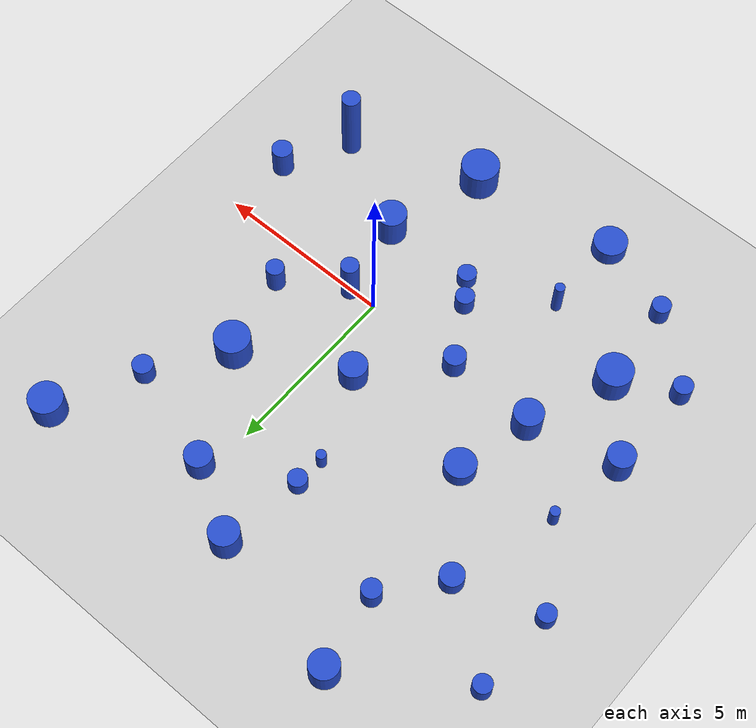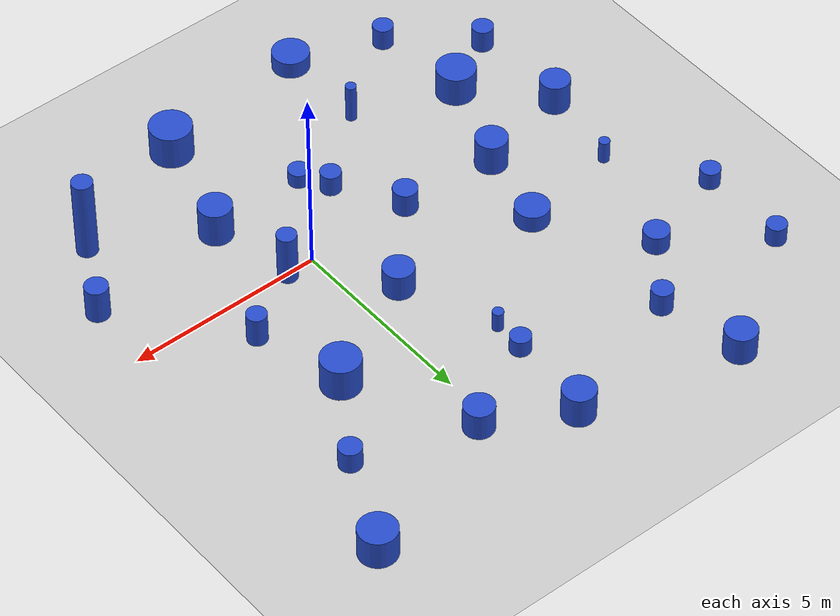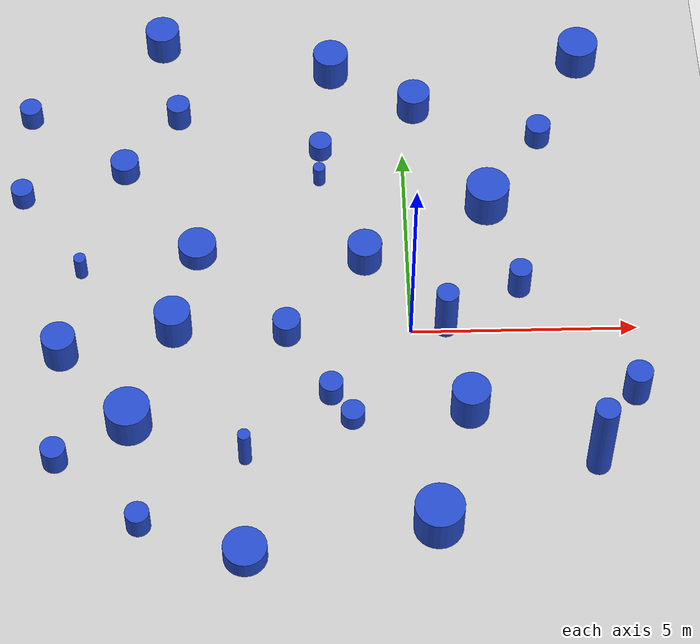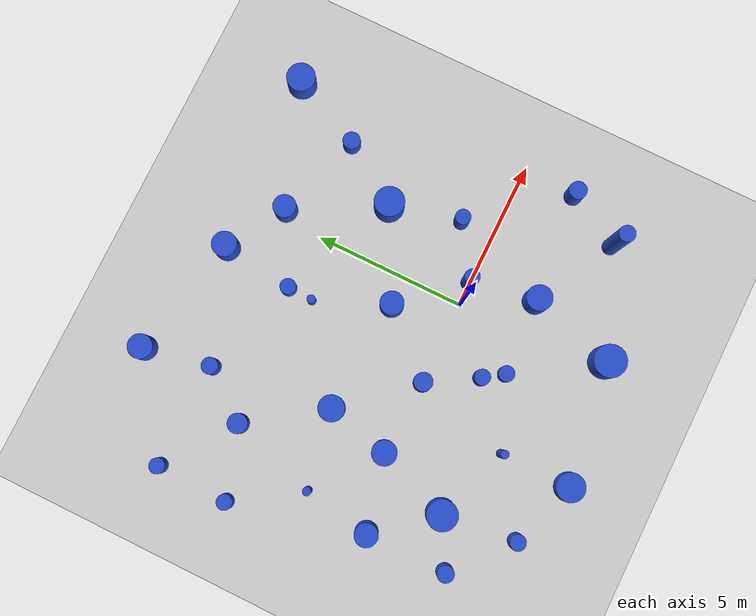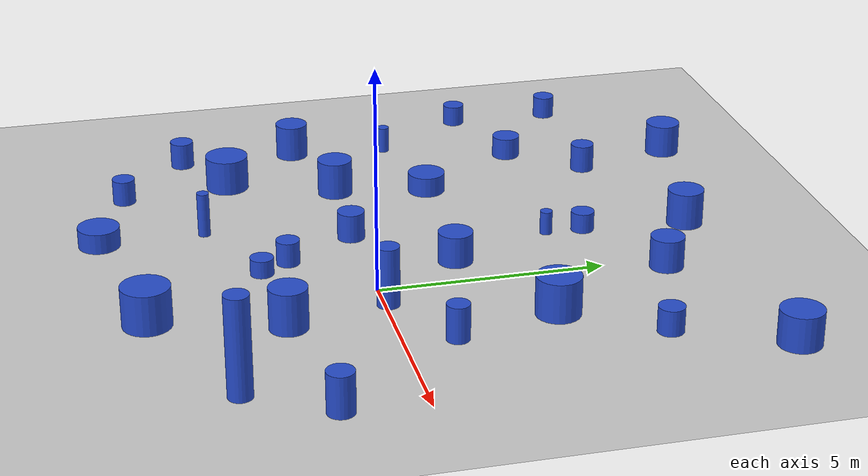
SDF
<sdf version="1.7">
 <world name="default">
  <plugin name="disable_physics" filename="libdisable_physics.so"/>
  <light name="sun" type="directional">
   <pose>0 0 10 0 -0 0</pose>
   <diffuse>0.8 0.8 0.8 1</diffuse>
   <specular>0.1 0.1 0.1 1</specular>
   <attenuation>
    <range>1000</range>
    <constant>0.9</constant>
    <linear>0.01</linear>
    <quadratic>0.001</quadratic>
   </attenuation>
   <direction>-0.5 0.5 -1</direction>
   <spot><inner_angle>0</inner_angle><outer_angle>0</outer_angle><falloff>0</falloff></spot>
  </light>
  <model name="ground_plane">
   <static>1</static>
   <link name="link">
    <collision name="collision">
     <geometry><plane><normal>0 0 1</normal><size>100 100</size></plane></geometry>
     <surface><friction><ode><mu>100</mu><mu2>50</mu2></ode></friction></surface>
    </collision>
    <visual name="visual">
     <cast_shadows>0</cast_shadows>
     <geometry><plane><normal>0 0 1</normal><size>100 100</size></plane></geometry>
     <material>
      <script><uri>file://media/materials/scripts/gazebo.material</uri><name>Gazebo/Grey</name></script>
     </material>
    </visual>
   </link>
  </model>
  <gravity>0 0 -9.8</gravity>
  <magnetic_field>6e-06 2.3e-05 -4.2e-05</magnetic_field>
  <atmosphere type="adiabatic"/>
  <physics name="default_physics" default="0" type="ode">
   <max_step_size>0.001</max_step_size>
   <real_time_factor>1</real_time_factor>
   <real_time_update_rate>1000</real_time_update_rate>
  </physics>
  <scene><ambient>0.4 0.4 0.4 1</ambient><background>0.7 0.7 0.7 1</background><shadows>1</shadows></scene>
  <spherical_coordinates>
   <surface_model>EARTH_WGS84</surface_model>
   <latitude_deg>0</latitude_deg>
   <longitude_deg>0</longitude_deg>
   <elevation>0</elevation>
   <heading_deg>0</heading_deg>
  </spherical_coordinates>
  <model name="8">
   <static>0</static>
   <link name="link">
    <inertial>
     <mass>2</mass>
     <inertia><ixx>2.56634</ixx><ixy>0</ixy><ixz>0</ixz><iyy>2.56634</iyy><iyz>0</iyz><izz>0.222806</izz></inertia>
    </inertial>
    <collision name="collision">
     <geometry><cylinder><length>0.788835</length><radius>0.472024</radius></cylinder></geometry>
     <surface><contact><collide_without_contact>1</collide_without_contact></contact></surface>
    </collision>
    <visual name="visual">
     <geometry><cylinder><length>0.788835</length><radius>0.472024</radius></cylinder></geometry>
     <material>
      <script><uri>file://media/materials/scripts/gazebo.material</uri><name>Gazebo/Blue</name></script>
     </material>
    </visual>
    <gravity>0</gravity>
   </link>
   <pose>4.30291 7.77628 0.388186 0 -0 0</pose>
  </model>
  <model name="33">
   <static>0</static>
   <link name="link">
    <inertial>
     <mass>2</mass>
     <inertia><ixx>2.44196</ixx><ixy>0</ixy><ixz>0</ixz><iyy>2.44196</iyy><iyz>0</iyz><izz>0.187757</izz></inertia>
    </inertial>
    <collision name="collision">
     <geometry><cylinder><length>1.36135</length><radius>0.247181</radius></cylinder></geometry>
     <surface><contact><collide_without_contact>1</collide_without_contact></contact></surface>
    </collision>
    <visual name="visual">
     <geometry><cylinder><length>1.36135</length><radius>0.247181</radius></cylinder></geometry>
     <material>
      <script><uri>file://media/materials/scripts/gazebo.material</uri><name>Gazebo/Blue</name></script>
     </material>
    </visual>
    <gravity>0</gravity>
   </link>
   <pose>0.765338 0.067626 0.719464 0 -0 0</pose>
  </model>
  <model name="38">
   <static>0</static>
   <link name="link">
    <inertial>
     <mass>2</mass>
     <inertia>
      <ixx>0.928398</ixx>
      <ixy>0</ixy>
      <ixz>0</ixz>
      <iyy>0.928398</iyy>
      <iyz>0</iyz>
      <izz>0.123325</izz>
     </inertia>
    </inertial>
    <collision name="collision">
     <geometry><cylinder><length>0.457021</length><radius>0.261405</radius></cylinder></geometry>
     <surface><contact><collide_without_contact>1</collide_without_contact></contact></surface>
    </collision>
    <visual name="visual">
     <geometry><cylinder><length>0.457021</length><radius>0.261405</radius></cylinder></geometry>
     <material>
      <script><uri>file://media/materials/scripts/gazebo.material</uri><name>Gazebo/Blue</name></script>
     </material>
    </visual>
    <gravity>0</gravity>
   </link>
   <pose>-1.91049 5.15552 0.224885 0 -0 0</pose>
  </model>
  <model name="42">
   <static>0</static>
   <link name="link">
    <inertial>
     <mass>2</mass>
     <inertia>
      <ixx>4.19788</ixx>
      <ixy>0</ixy>
      <ixz>0</ixz>
      <iyy>4.19788</iyy>
      <iyz>0</iyz>
      <izz>0.0844153</izz>
     </inertia>
    </inertial>
    <collision name="collision">
     <geometry><cylinder><length>0.90815</length><radius>0.290543</radius></cylinder></geometry>
     <surface><contact><collide_without_contact>1</collide_without_contact></contact></surface>
    </collision>
    <visual name="visual">
     <geometry><cylinder><length>0.90815</length><radius>0.290543</radius></cylinder></geometry>
     <material>
      <script><uri>file://media/materials/scripts/gazebo.material</uri><name>Gazebo/Blue</name></script>
     </material>
    </visual>
    <gravity>0</gravity>
   </link>
   <pose>4.8075 -1.75424 0.460548 0 -0 0</pose>
  </model>
  <model name="52">
   <static>0</static>
   <link name="link">
    <inertial>
     <mass>2</mass>
     <inertia>
      <ixx>3.67726</ixx>
      <ixy>0</ixy>
      <ixz>0</ixz>
      <iyy>3.67726</iyy>
      <iyz>0</iyz>
      <izz>0.0947076</izz>
     </inertia>
    </inertial>
    <collision name="collision">
     <geometry><cylinder><length>0.678728</length><radius>0.307746</radius></cylinder></geometry>
     <surface><contact><collide_without_contact>1</collide_without_contact></contact></surface>
    </collision>
    <visual name="visual">
     <geometry><cylinder><length>0.678728</length><radius>0.307746</radius></cylinder></geometry>
     <material>
      <script><uri>file://media/materials/scripts/gazebo.material</uri><name>Gazebo/Blue</name></script>
     </material>
    </visual>
    <gravity>0</gravity>
   </link>
   <pose>-2.75432 -0.004318 0.294469 0 -0 0</pose>
  </model>
  <model name="61">
   <static>0</static>
   <link name="link">
    <inertial>
     <mass>2</mass>
     <inertia><ixx>2.9263</ixx><ixy>0</ixy><ixz>0</ixz><iyy>2.9263</iyy><iyz>0</iyz><izz>0.149705</izz></inertia>
    </inertial>
    <collision name="collision">
     <geometry><cylinder><length>0.721463</length><radius>0.386917</radius></cylinder></geometry>
     <surface><contact><collide_without_contact>1</collide_without_contact></contact></surface>
    </collision>
    <visual name="visual">
     <geometry><cylinder><length>0.721463</length><radius>0.386917</radius></cylinder></geometry>
     <material>
      <script><uri>file://media/materials/scripts/gazebo.material</uri><name>Gazebo/Blue</name></script>
     </material>
    </visual>
    <gravity>0</gravity>
   </link>
   <pose>-0.973491 1.95437 0.36623 0 -0 0</pose>
  </model>
  <model name="64">
   <static>0</static>
   <link name="link">
    <inertial>
     <mass>2</mass>
     <inertia><ixx>3.05222</ixx><ixy>0</ixy><ixz>0</ixz><iyy>3.05222</iyy><iyz>0</iyz><izz>0.246295</izz></inertia>
    </inertial>
    <collision name="collision">
     <geometry><cylinder><length>0.806141</length><radius>0.496281</radius></cylinder></geometry>
     <surface><contact><collide_without_contact>1</collide_without_contact></contact></surface>
    </collision>
    <visual name="visual">
     <geometry><cylinder><length>0.806141</length><radius>0.496281</radius></cylinder></geometry>
     <material>
      <script><uri>file://media/materials/scripts/gazebo.material</uri><name>Gazebo/Blue</name></script>
     </material>
    </visual>
    <gravity>0</gravity>
   </link>
   <pose>-6.16897 -2.28992 0.387861 0 -0 0</pose>
  </model>
  <model name="70">
   <static>0</static>
   <link name="link">
    <inertial>
     <mass>2</mass>
     <inertia>
      <ixx>4.12077</ixx>
      <ixy>0</ixy>
      <ixz>0</ixz>
      <iyy>4.12077</iyy>
      <iyz>0</iyz>
      <izz>0.0638492</izz>
     </inertia>
    </inertial>
    <collision name="collision">
     <geometry><cylinder><length>0.813365</length><radius>0.252684</radius></cylinder></geometry>
     <surface><contact><collide_without_contact>1</collide_without_contact></contact></surface>
    </collision>
    <visual name="visual">
     <geometry><cylinder><length>0.813365</length><radius>0.252684</radius></cylinder></geometry>
     <material>
      <script><uri>file://media/materials/scripts/gazebo.material</uri><name>Gazebo/Blue</name></script>
     </material>
    </visual>
    <gravity>0</gravity>
   </link>
   <pose>2.46779 1.13332 0.389046 0 -0 0</pose>
  </model>
  <model name="74">
   <static>0</static>
   <link name="link">
    <inertial>
     <mass>2</mass>
     <inertia><ixx>3.58592</ixx><ixy>0</ixy><ixz>0</ixz><iyy>3.58592</iyy><iyz>0</iyz><izz>0.162136</izz></inertia>
    </inertial>
    <collision name="collision">
     <geometry><cylinder><length>0.975403</length><radius>0.402661</radius></cylinder></geometry>
     <surface><contact><collide_without_contact>1</collide_without_contact></contact></surface>
    </collision>
    <visual name="visual">
     <geometry><cylinder><length>0.975403</length><radius>0.402661</radius></cylinder></geometry>
     <material>
      <script><uri>file://media/materials/scripts/gazebo.material</uri><name>Gazebo/Blue</name></script>
     </material>
    </visual>
    <gravity>0</gravity>
   </link>
   <pose>-5.25256 0.128011 0.34798 0 -0 0</pose>
  </model>
  <model name="102">
   <static>0</static>
   <link name="link">
    <inertial>
     <mass>2</mass>
     <inertia><ixx>2.03174</ixx><ixy>0</ixy><ixz>0</ixz><iyy>2.03174</iyy><iyz>0</iyz><izz>0.142404</izz></inertia>
    </inertial>
    <collision name="collision">
     <geometry><cylinder><length>0.781273</length><radius>0.377365</radius></cylinder></geometry>
     <surface><contact><collide_without_contact>1</collide_without_contact></contact></surface>
    </collision>
    <visual name="visual">
     <geometry><cylinder><length>0.781273</length><radius>0.377365</radius></cylinder></geometry>
     <material>
      <script><uri>file://media/materials/scripts/gazebo.material</uri><name>Gazebo/Blue</name></script>
     </material>
    </visual>
    <gravity>0</gravity>
   </link>
   <pose>0.312792 6.37117 0.324257 0 -0 0</pose>
  </model>
  <model name="104">
   <static>0</static>
   <link name="link">
    <inertial>
     <mass>2</mass>
     <inertia>
      <ixx>0.866746</ixx>
      <ixy>0</ixy>
      <ixz>0</ixz>
      <iyy>0.866746</iyy>
      <iyz>0</iyz>
      <izz>0.105059</izz>
     </inertia>
    </inertial>
    <collision name="collision">
     <geometry><cylinder><length>0.517256</length><radius>0.324128</radius></cylinder></geometry>
     <surface><contact><collide_without_contact>1</collide_without_contact></contact></surface>
    </collision>
    <visual name="visual">
     <geometry><cylinder><length>0.517256</length><radius>0.324128</radius></cylinder></geometry>
     <material>
      <script><uri>file://media/materials/scripts/gazebo.material</uri><name>Gazebo/Blue</name></script>
     </material>
    </visual>
    <gravity>0</gravity>
   </link>
   <pose>-6.4524 4.62832 0.255984 0 -0 0</pose>
  </model>
  <model name="105">
   <static>0</static>
   <link name="link">
    <inertial>
     <mass>2</mass>
     <inertia><ixx>2.06606</ixx><ixy>0</ixy><ixz>0</ixz><iyy>2.06606</iyy><iyz>0</iyz><izz>0.17566</izz></inertia>
    </inertial>
    <collision name="collision">
     <geometry><cylinder><length>1.05597</length><radius>0.419118</radius></cylinder></geometry>
     <surface><contact><collide_without_contact>1</collide_without_contact></contact></surface>
    </collision>
    <visual name="visual">
     <geometry><cylinder><length>1.05597</length><radius>0.419118</radius></cylinder></geometry>
     <material>
      <script><uri>file://media/materials/scripts/gazebo.material</uri><name>Gazebo/Blue</name></script>
     </material>
    </visual>
    <gravity>0</gravity>
   </link>
   <pose>1.17284 -2.113 0.393714 0 -0 0</pose>
  </model>
  <model name="112">
   <static>0</static>
   <link name="link">
    <inertial>
     <mass>2</mass>
     <inertia><ixx>2.22524</ixx><ixy>0</ixy><ixz>0</ixz><iyy>2.22524</iyy><iyz>0</iyz><izz>0.133987</izz></inertia>
    </inertial>
    <collision name="collision">
     <geometry><cylinder><length>0.551404</length><radius>0.138317</radius></cylinder></geometry>
     <surface><contact><collide_without_contact>1</collide_without_contact></contact></surface>
    </collision>
    <visual name="visual">
     <geometry><cylinder><length>0.551404</length><radius>0.138317</radius></cylinder></geometry>
     <material>
      <script><uri>file://media/materials/scripts/gazebo.material</uri><name>Gazebo/Blue</name></script>
     </material>
    </visual>
    <gravity>0</gravity>
   </link>
   <pose>-1.95384 4.31209 0.24424 0 -0 0</pose>
  </model>
  <model name="121">
   <static>0</static>
   <link name="link">
    <inertial>
     <mass>2</mass>
     <inertia>
      <ixx>0.701249</ixx>
      <ixy>0</ixy>
      <ixz>0</ixz>
      <iyy>0.701249</iyy>
      <iyz>0</iyz>
      <izz>0.0646593</izz>
     </inertia>
    </inertial>
    <collision name="collision">
     <geometry><cylinder><length>0.528269</length><radius>0.254282</radius></cylinder></geometry>
     <surface><contact><collide_without_contact>1</collide_without_contact></contact></surface>
    </collision>
    <visual name="visual">
     <geometry><cylinder><length>0.528269</length><radius>0.254282</radius></cylinder></geometry>
     <material>
      <script><uri>file://media/materials/scripts/gazebo.material</uri><name>Gazebo/Blue</name></script>
     </material>
    </visual>
    <gravity>0</gravity>
   </link>
   <pose>-8.70228 6.25985 0.286372 0 -0 0</pose>
  </model>
  <model name="138">
   <static>0</static>
   <link name="link">
    <inertial>
     <mass>2</mass>
     <inertia>
      <ixx>2.11905</ixx>
      <ixy>0</ixy>
      <ixz>0</ixz>
      <iyy>2.11905</iyy>
      <iyz>0</iyz>
      <izz>0.0820105</izz>
     </inertia>
    </inertial>
    <collision name="collision">
     <geometry><cylinder><length>0.581613</length><radius>0.286375</radius></cylinder></geometry>
     <surface><contact><collide_without_contact>1</collide_without_contact></contact></surface>
    </collision>
    <visual name="visual">
     <geometry><cylinder><length>0.581613</length><radius>0.286375</radius></cylinder></geometry>
     <material>
      <script><uri>file://media/materials/scripts/gazebo.material</uri><name>Gazebo/Blue</name></script>
     </material>
    </visual>
    <gravity>0</gravity>
   </link>
   <pose>3.19444 5.4242 0.290315 0 -0 0</pose>
  </model>
  <model name="154">
   <static>0</static>
   <link name="link">
    <inertial>
     <mass>2</mass>
     <inertia><ixx>1.7028</ixx><ixy>0</ixy><ixz>0</ixz><iyy>1.7028</iyy><iyz>0</iyz><izz>0.159402</izz></inertia>
    </inertial>
    <collision name="collision">
     <geometry><cylinder><length>0.769966</length><radius>0.399252</radius></cylinder></geometry>
     <surface><contact><collide_without_contact>1</collide_without_contact></contact></surface>
    </collision>
    <visual name="visual">
     <geometry><cylinder><length>0.769966</length><radius>0.399252</radius></cylinder></geometry>
     <material>
      <script><uri>file://media/materials/scripts/gazebo.material</uri><name>Gazebo/Blue</name></script>
     </material>
    </visual>
    <gravity>0</gravity>
   </link>
   <pose>-5.64026 8.38539 0.435404 0 -0 0</pose>
  </model>
  <model name="160">
   <static>0</static>
   <link name="link">
    <inertial>
     <mass>2</mass>
     <inertia><ixx>1.12383</ixx><ixy>0</ixy><ixz>0</ixz><iyy>1.12383</iyy><iyz>0</iyz><izz>0.220587</izz></inertia>
    </inertial>
    <collision name="collision">
     <geometry><cylinder><length>0.531733</length><radius>0.469667</radius></cylinder></geometry>
     <surface><contact><collide_without_contact>1</collide_without_contact></contact></surface>
    </collision>
    <visual name="visual">
     <geometry><cylinder><length>0.531733</length><radius>0.469667</radius></cylinder></geometry>
     <material>
      <script><uri>file://media/materials/scripts/gazebo.material</uri><name>Gazebo/Blue</name></script>
     </material>
    </visual>
    <gravity>0</gravity>
   </link>
   <pose>-3.67528 -5.52874 0.176052 0 -0 0</pose>
  </model>
  <model name="201">
   <static>0</static>
   <link name="link">
    <inertial>
     <mass>2</mass>
     <inertia><ixx>1.42204</ixx><ixy>0</ixy><ixz>0</ixz><iyy>1.42204</iyy><iyz>0</iyz><izz>0.184462</izz></inertia>
    </inertial>
    <collision name="collision">
     <geometry><cylinder><length>0.465272</length><radius>0.429491</radius></cylinder></geometry>
     <surface><contact><collide_without_contact>1</collide_without_contact></contact></surface>
    </collision>
    <visual name="visual">
     <geometry><cylinder><length>0.465272</length><radius>0.429491</radius></cylinder></geometry>
     <material>
      <script><uri>file://media/materials/scripts/gazebo.material</uri><name>Gazebo/Blue</name></script>
     </material>
    </visual>
    <gravity>0</gravity>
   </link>
   <pose>-4.74614 2.21242 0.276179 0 -0 0</pose>
  </model>
  <model name="210">
   <static>0</static>
   <link name="link">
    <inertial>
     <mass>2</mass>
     <inertia><ixx>1.78793</ixx><ixy>0</ixy><ixz>0</ixz><iyy>1.78793</iyy><iyz>0</iyz><izz>0.167015</izz></inertia>
    </inertial>
    <collision name="collision">
     <geometry><cylinder><length>0.841898</length><radius>0.408674</radius></cylinder></geometry>
     <surface><contact><collide_without_contact>1</collide_without_contact></contact></surface>
    </collision>
    <visual name="visual">
     <geometry><cylinder><length>0.841898</length><radius>0.408674</radius></cylinder></geometry>
     <material>
      <script><uri>file://media/materials/scripts/gazebo.material</uri><name>Gazebo/Blue</name></script>
     </material>
    </visual>
    <gravity>0</gravity>
   </link>
   <pose>-1.62162 7.49488 0.444214 0 -0 0</pose>
  </model>
  <model name="218">
   <static>0</static>
   <link name="link">
    <inertial>
     <mass>2</mass>
     <inertia><ixx>3.32031</ixx><ixy>0</ixy><ixz>0</ixz><iyy>3.32031</iyy><iyz>0</iyz><izz>0.28159</izz></inertia>
    </inertial>
    <collision name="collision">
     <geometry><cylinder><length>0.981839</length><radius>0.530651</radius></cylinder></geometry>
     <surface><contact><collide_without_contact>1</collide_without_contact></contact></surface>
    </collision>
    <visual name="visual">
     <geometry><cylinder><length>0.981839</length><radius>0.530651</radius></cylinder></geometry>
     <material>
      <script><uri>file://media/materials/scripts/gazebo.material</uri><name>Gazebo/Blue</name></script>
     </material>
    </visual>
    <gravity>0</gravity>
   </link>
   <pose>0.360431 -4.91637 0.391486 0 -0 0</pose>
  </model>
  <model name="231">
   <static>0</static>
   <link name="link">
    <inertial>
     <mass>2</mass>
     <inertia>
      <ixx>3.14707</ixx>
      <ixy>0</ixy>
      <ixz>0</ixz>
      <iyy>3.14707</iyy>
      <iyz>0</iyz>
      <izz>0.0736251</izz>
     </inertia>
    </inertial>
    <collision name="collision">
     <geometry><cylinder><length>0.644127</length><radius>0.271339</radius></cylinder></geometry>
     <surface><contact><collide_without_contact>1</collide_without_contact></contact></surface>
    </collision>
    <visual name="visual">
     <geometry><cylinder><length>0.644127</length><radius>0.271339</radius></cylinder></geometry>
     <material>
      <script><uri>file://media/materials/scripts/gazebo.material</uri><name>Gazebo/Blue</name></script>
     </material>
    </visual>
    <gravity>0</gravity>
   </link>
   <pose>-5.23154 6.19939 0.312174 0 -0 0</pose>
  </model>
  <model name="249">
   <static>0</static>
   <link name="link">
    <inertial>
     <mass>2</mass>
     <inertia><ixx>2.81614</ixx><ixy>0</ixy><ixz>0</ixz><iyy>2.81614</iyy><iyz>0</iyz><izz>0.242939</izz></inertia>
    </inertial>
    <collision name="collision">
     <geometry><cylinder><length>0.902458</length><radius>0.492889</radius></cylinder></geometry>
     <surface><contact><collide_without_contact>1</collide_without_contact></contact></surface>
    </collision>
    <visual name="visual">
     <geometry><cylinder><length>0.902458</length><radius>0.492889</radius></cylinder></geometry>
     <material>
      <script><uri>file://media/materials/scripts/gazebo.material</uri><name>Gazebo/Blue</name></script>
     </material>
    </visual>
    <gravity>0</gravity>
   </link>
   <pose>1.87559 3.4338 0.418598 0 -0 0</pose>
  </model>
  <audio><device>default</device></audio>
  <model name="38_clone">
   <static>0</static>
   <link name="link">
    <inertial>
     <mass>2</mass>
     <inertia>
      <ixx>0.928398</ixx>
      <ixy>0</ixy>
      <ixz>0</ixz>
      <iyy>0.928398</iyy>
      <iyz>0</iyz>
      <izz>0.123325</izz>
     </inertia>
    </inertial>
    <collision name="collision">
     <geometry><cylinder><length>2.20615</length><radius>0.261405</radius></cylinder></geometry>
     <surface><contact><collide_without_contact>1</collide_without_contact></contact></surface>
    </collision>
    <visual name="visual">
     <geometry><cylinder><length>2.20615</length><radius>0.261405</radius></cylinder></geometry>
     <material>
      <script><uri>file://media/materials/scripts/gazebo.material</uri><name>Gazebo/Blue</name></script>
     </material>
    </visual>
    <gravity>0</gravity>
   </link>
   <pose>3.82705 -3.52235 1.14022 0 -0 0</pose>
  </model>
  <model name="38_clone_clone">
   <static>0</static>
   <link name="link">
    <inertial>
     <mass>2</mass>
     <inertia>
      <ixx>0.928398</ixx>
      <ixy>0</ixy>
      <ixz>0</ixz>
      <iyy>0.928398</iyy>
      <iyz>0</iyz>
      <izz>0.123325</izz>
     </inertia>
    </inertial>
    <collision name="collision">
     <geometry><cylinder><length>0.397344</length><radius>0.261405</radius></cylinder></geometry>
     <surface><contact><collide_without_contact>1</collide_without_contact></contact></surface>
    </collision>
    <visual name="visual">
     <geometry><cylinder><length>0.397344</length><radius>0.261405</radius></cylinder></geometry>
     <material>
      <script><uri>file://media/materials/scripts/gazebo.material</uri><name>Gazebo/Blue</name></script>
     </material>
    </visual>
    <gravity>0</gravity>
   </link>
   <pose>-1.35868 -2.25032 0.206767 0 -0 0</pose>
  </model>
  <model name="38_clone_clone_0">
   <static>0</static>
   <link name="link">
    <inertial>
     <mass>2</mass>
     <inertia>
      <ixx>0.928398</ixx>
      <ixy>0</ixy>
      <ixz>0</ixz>
      <iyy>0.928398</iyy>
      <iyz>0</iyz>
      <izz>0.123325</izz>
     </inertia>
    </inertial>
    <collision name="collision">
     <geometry><cylinder><length>0.564236</length><radius>0.261405</radius></cylinder></geometry>
     <surface><contact><collide_without_contact>1</collide_without_contact></contact></surface>
    </collision>
    <visual name="visual">
     <geometry><cylinder><length>0.564236</length><radius>0.261405</radius></cylinder></geometry>
     <material>
      <script><uri>file://media/materials/scripts/gazebo.material</uri><name>Gazebo/Blue</name></script>
     </material>
    </visual>
    <gravity>0</gravity>
   </link>
   <pose>-1.80659 -1.60163 0.259663 0 -0 0</pose>
  </model>
  <model name="112_clone">
   <static>0</static>
   <link name="link">
    <inertial>
     <mass>2</mass>
     <inertia><ixx>2.22524</ixx><ixy>0</ixy><ixz>0</ixz><iyy>2.22524</iyy><iyz>0</iyz><izz>0.133987</izz></inertia>
    </inertial>
    <collision name="collision">
     <geometry><cylinder><length>1.1199</length><radius>0.138317</radius></cylinder></geometry>
     <surface><contact><collide_without_contact>1</collide_without_contact></contact></surface>
    </collision>
    <visual name="visual">
     <geometry><cylinder><length>1.1199</length><radius>0.138317</radius></cylinder></geometry>
     <material>
      <script><uri>file://media/materials/scripts/gazebo.material</uri><name>Gazebo/Blue</name></script>
     </material>
    </visual>
    <gravity>0</gravity>
   </link>
   <pose>-3.67518 -3.18387 0.444983 0 -0 0</pose>
  </model>
  <model name="112_clone_clone">
   <static>0</static>
   <link name="link">
    <inertial>
     <mass>2</mass>
     <inertia><ixx>2.22524</ixx><ixy>0</ixy><ixz>0</ixz><iyy>2.22524</iyy><iyz>0</iyz><izz>0.133987</izz></inertia>
    </inertial>
    <collision name="collision">
     <geometry><cylinder><length>0.612983</length><radius>0.138317</radius></cylinder></geometry>
     <surface><contact><collide_without_contact>1</collide_without_contact></contact></surface>
    </collision>
    <visual name="visual">
     <geometry><cylinder><length>0.612983</length><radius>0.138317</radius></cylinder></geometry>
     <material>
      <script><uri>file://media/materials/scripts/gazebo.material</uri><name>Gazebo/Blue</name></script>
     </material>
    </visual>
    <gravity>0</gravity>
   </link>
   <pose>-7.35554 1.74954 0.341824 0 -0 0</pose>
  </model>
  <model name="121_clone">
   <static>0</static>
   <link name="link">
    <inertial>
     <mass>2</mass>
     <inertia>
      <ixx>0.701249</ixx>
      <ixy>0</ixy>
      <ixz>0</ixz>
      <iyy>0.701249</iyy>
      <iyz>0</iyz>
      <izz>0.0646593</izz>
     </inertia>
    </inertial>
    <collision name="collision">
     <geometry><cylinder><length>0.487651</length><radius>0.254282</radius></cylinder></geometry>
     <surface><contact><collide_without_contact>1</collide_without_contact></contact></surface>
    </collision>
    <visual name="visual">
     <geometry><cylinder><length>0.487651</length><radius>0.254282</radius></cylinder></geometry>
     <material>
      <script><uri>file://media/materials/scripts/gazebo.material</uri><name>Gazebo/Blue</name></script>
     </material>
    </visual>
    <gravity>0</gravity>
   </link>
   <pose>-8.78017 3.89438 0.253781 0 -0 0</pose>
  </model>
  <model name="38_clone_0">
   <static>0</static>
   <link name="link">
    <inertial>
     <mass>2</mass>
     <inertia>
      <ixx>0.928398</ixx>
      <ixy>0</ixy>
      <ixz>0</ixz>
      <iyy>0.928398</iyy>
      <iyz>0</iyz>
      <izz>0.123325</izz>
     </inertia>
    </inertial>
    <collision name="collision">
     <geometry><cylinder><length>0.624266</length><radius>0.261405</radius></cylinder></geometry>
     <surface><contact><collide_without_contact>1</collide_without_contact></contact></surface>
    </collision>
    <visual name="visual">
     <geometry><cylinder><length>0.624266</length><radius>0.261405</radius></cylinder></geometry>
     <material>
      <script><uri>file://media/materials/scripts/gazebo.material</uri><name>Gazebo/Blue</name></script>
     </material>
    </visual>
    <gravity>0</gravity>
   </link>
   <pose>-5.9037 -4.74657 0.254721 0 -0 0</pose>
  </model>
  <model name="222_clone">
   <static>0</static>
   <link name="link">
    <inertial>
     <mass>2</mass>
     <inertia>
      <ixx>2.72442</ixx>
      <ixy>0</ixy>
      <ixz>0</ixz>
      <iyy>2.72442</iyy>
      <iyz>0</iyz>
      <izz>0.0740423</izz>
     </inertia>
    </inertial>
    <collision name="collision">
     <geometry><cylinder><length>0.689897</length><radius>0.272107</radius></cylinder></geometry>
     <surface><contact><collide_without_contact>1</collide_without_contact></contact></surface>
    </collision>
    <visual name="visual">
     <geometry><cylinder><length>0.689897</length><radius>0.272107</radius></cylinder></geometry>
     <material>
      <script><uri>file://media/materials/scripts/gazebo.material</uri><name>Gazebo/Blue</name></script>
     </material>
    </visual>
    <gravity>0</gravity>
   </link>
   <pose>-7.7195 -3.15837 0.26107 0 -0 0</pose>
  </model>
  <model name="102_clone">
   <static>0</static>
   <link name="link">
    <inertial>
     <mass>2</mass>
     <inertia><ixx>2.03174</ixx><ixy>0</ixy><ixz>0</ixz><iyy>2.03174</iyy><iyz>0</iyz><izz>0.142404</izz></inertia>
    </inertial>
    <collision name="collision">
     <geometry><cylinder><length>0.833206</length><radius>0.377365</radius></cylinder></geometry>
     <surface><contact><collide_without_contact>1</collide_without_contact></contact></surface>
    </collision>
    <visual name="visual">
     <geometry><cylinder><length>0.833206</length><radius>0.377365</radius></cylinder></geometry>
     <material>
      <script><uri>file://media/materials/scripts/gazebo.material</uri><name>Gazebo/Blue</name></script>
     </material>
    </visual>
    <gravity>0</gravity>
   </link>
   <pose>-7.7178 -0.46436 0.40091 0 -0 0</pose>
  </model>
 </world>
</sdf>
